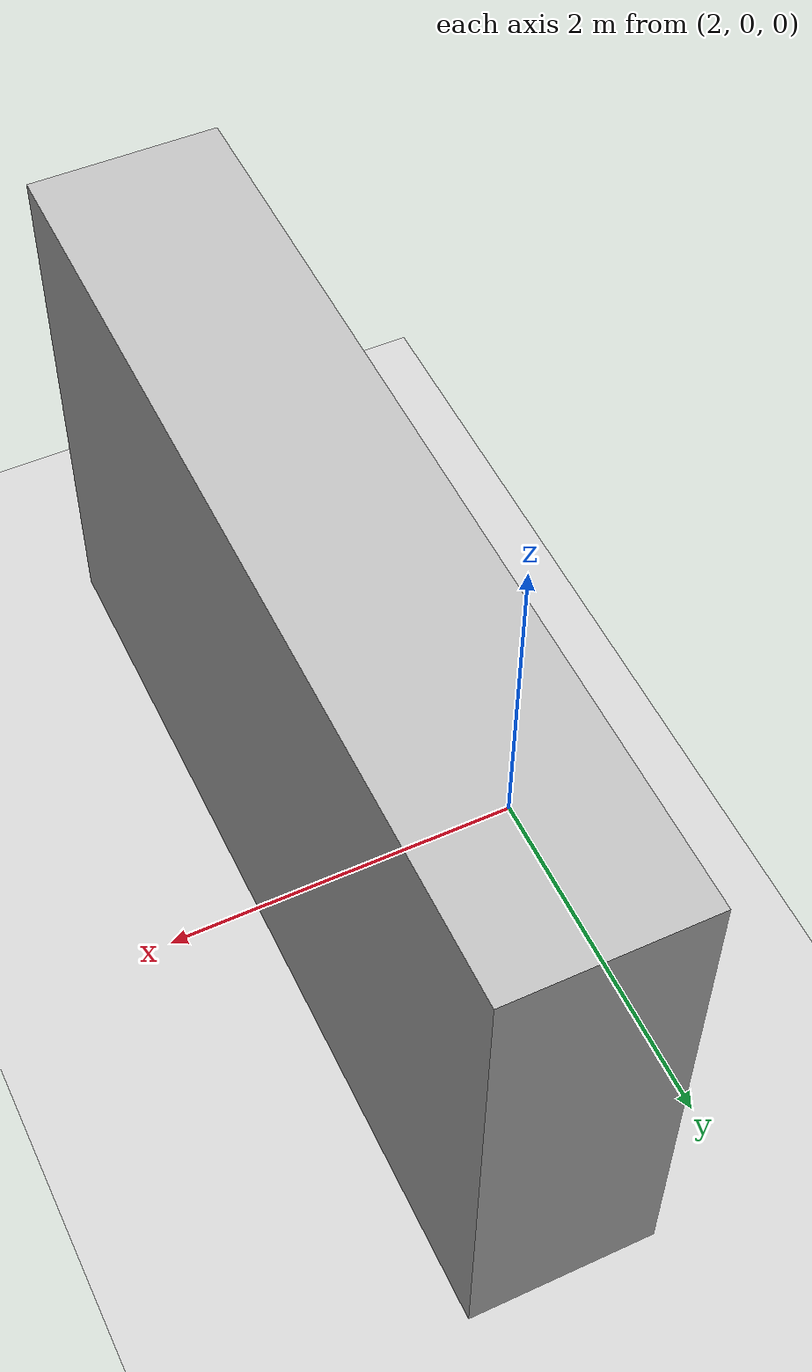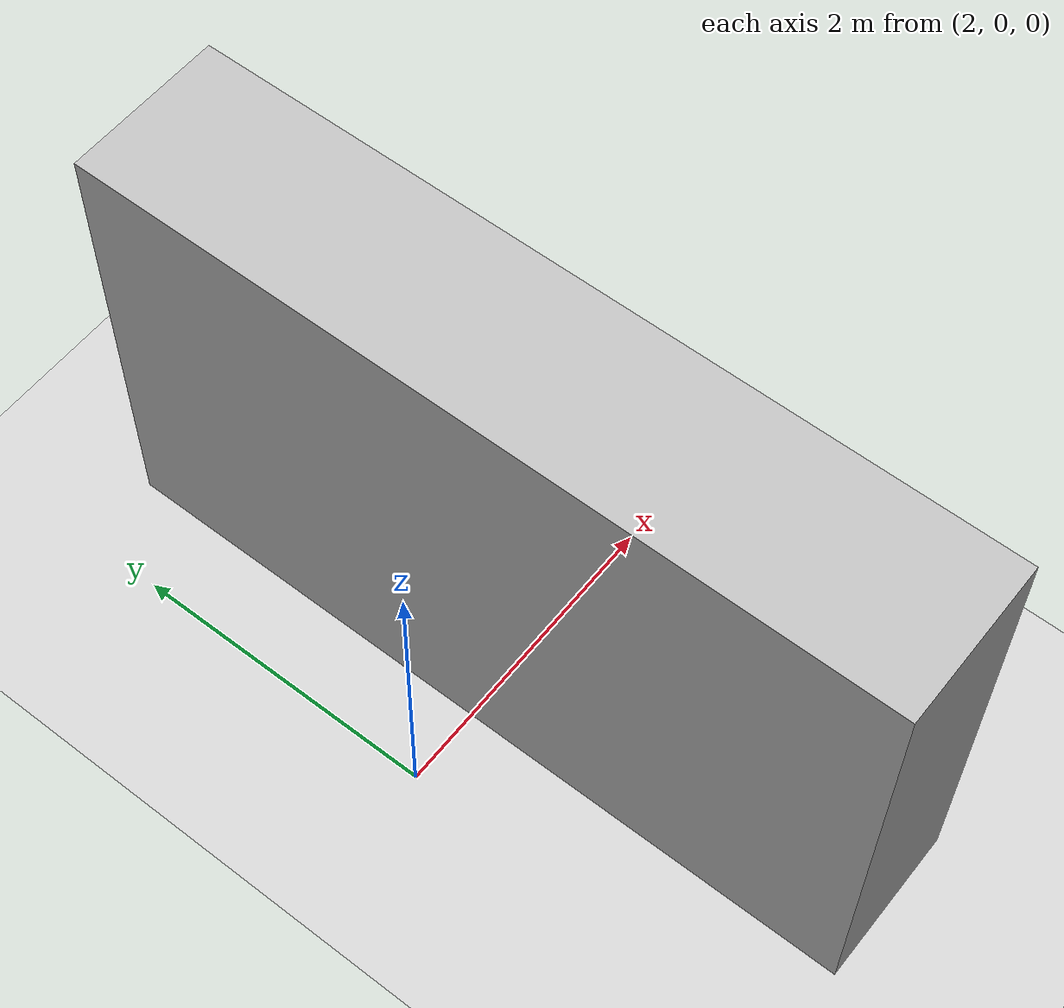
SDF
<?xml version="1.0"?>
<!-- Standard Definition File of Gazebo -->
<sdf version="1.5">
    <world name="default">
        <!-- A global light source -->
        <include>
            <uri>model://sun</uri>
        </include>
        <!-- A ground plane -->
        <include>
            <uri>model://ground_plane</uri>
        </include>
        <model name="brick_wall">
            <static>true</static>
            <link name = "chassis">
                <pose frame="">3 0 1.5 0 0 -1.5708</pose>
                <collision name="collision">
                    <geometry>
                        <box>
                            <size>5 1 3</size>
                        </box>
                    </geometry>
                    <max_contacts>10</max_contacts>
                    <surface>
                        <bounce />
                        <friction>
                            <ode />
                        </friction>
                        <contact>
                            <ode />
                        </contact>
                    </surface>
                </collision>
                <visual name="visual">
                    <geometry>
                        <mesh>
                            <uri>model://brick_box_3x1x3/meshes/simple_box.dae</uri>
                            <scale>5 1 3</scale>
                        </mesh>
                    </geometry>
                    <material>
                        <script>
                            <uri>model://brick_box_3x1x3/materials/scripts</uri>
                            <uri>model://brick_box_3x1x3/materials/textures</uri>
                            <name>BrickBox/Diffuse</name>
                        </script>
                    </material>
                </visual>
                <velocity_decay>
                    <linear>0</linear>
                    <angular>0</angular>
                </velocity_decay>
                <self_collide>0</self_collide>
                <kinematic>0</kinematic>
                <gravity>1</gravity>
            </link>
        </model>
    </world>
  </sdf>
